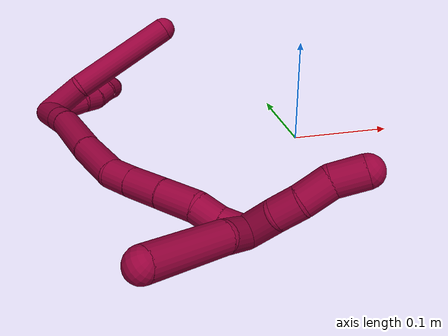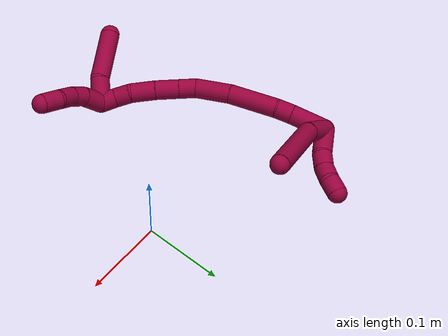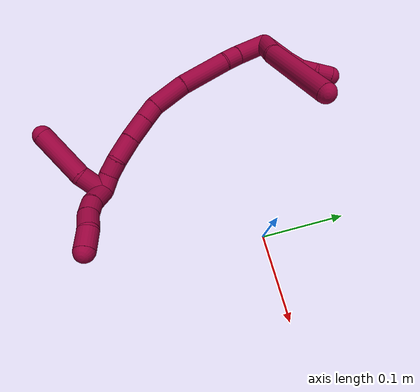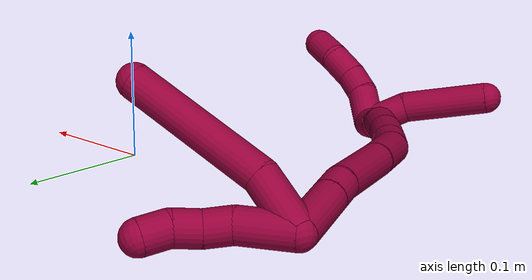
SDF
<sdf version="1.7">
 <world name="default">
  <model name="8">
   <static>0</static>
   <link name="8">
    <collision name="collision-cylinder-e_1_2_8">
     <pose>0.002062 0.005197 0.021239 -0.239973 0.094037 -0.011346</pose>
     <geometry><cylinder><radius>0.0125</radius><length>0.043925</length></cylinder></geometry>
     <surface>
      <friction><ode><mu>1.16</mu><mu2>1.16</mu2><slip1>0</slip1><slip2>0</slip2></ode></friction>
      <contact><ode><kp>1e+06</kp><kd>1</kd><max_vel>0</max_vel><min_depth>0.001</min_depth></ode></contact>
     </surface>
    </collision>
    <visual name="visual-cylinder-e_1_2_8">
     <pose>0.002062 0.005197 0.021239 -0.239973 0.094037 -0.011346</pose>
     <geometry><cylinder><radius>0.0125</radius><length>0.043925</length></cylinder></geometry>
     <material><ambient>0.584314 0 0.227451 1</ambient></material>
    </visual>
    <collision name="collision-cylinder-e_2_8_6">
     <pose>0.013222 0.038023 0.086827 -0.557151 0.172389 -0.049418</pose>
     <geometry><cylinder><radius>0.0125</radius><length>0.106075</length></cylinder></geometry>
     <surface>
      <friction><ode><mu>1.16</mu><mu2>1.16</mu2><slip1>0</slip1><slip2>0</slip2></ode></friction>
      <contact><ode><kp>1e+06</kp><kd>1</kd><max_vel>0</max_vel><min_depth>0.001</min_depth></ode></contact>
     </surface>
    </collision>
    <visual name="visual-cylinder-e_2_8_6">
     <pose>0.013222 0.038023 0.086827 -0.557151 0.172389 -0.049418</pose>
     <geometry><cylinder><radius>0.0125</radius><length>0.106075</length></cylinder></geometry>
     <material><ambient>0.584314 0 0.227451 1</ambient></material>
    </visual>
    <collision name="collision-cylinder-e_1_2_9">
     <pose>0.007858 0.01603 0.00898 -1.06014 0.404119 -0.238952</pose>
     <geometry><cylinder><radius>0.0125</radius><length>0.039967</length></cylinder></geometry>
     <surface>
      <friction><ode><mu>1.16</mu><mu2>1.16</mu2><slip1>0</slip1><slip2>0</slip2></ode></friction>
      <contact><ode><kp>1e+06</kp><kd>1</kd><max_vel>0</max_vel><min_depth>0.001</min_depth></ode></contact>
     </surface>
    </collision>
    <visual name="visual-cylinder-e_1_2_9">
     <pose>0.007858 0.01603 0.00898 -1.06014 0.404119 -0.238952</pose>
     <geometry><cylinder><radius>0.0125</radius><length>0.039967</length></cylinder></geometry>
     <material><ambient>0.584314 0 0.227451 1</ambient></material>
    </visual>
    <collision name="collision-cylinder-e_2_9_10">
     <pose>0.019428 0.041128 0.019964 -1.35332 0.380309 -0.306753</pose>
     <geometry><cylinder><radius>0.0125</radius><length>0.020002</length></cylinder></geometry>
     <surface>
      <friction><ode><mu>1.16</mu><mu2>1.16</mu2><slip1>0</slip1><slip2>0</slip2></ode></friction>
      <contact><ode><kp>1e+06</kp><kd>1</kd><max_vel>0</max_vel><min_depth>0.001</min_depth></ode></contact>
     </surface>
    </collision>
    <visual name="visual-cylinder-e_2_9_10">
     <pose>0.019428 0.041128 0.019964 -1.35332 0.380309 -0.306753</pose>
     <geometry><cylinder><radius>0.0125</radius><length>0.020002</length></cylinder></geometry>
     <material><ambient>0.584314 0 0.227451 1</ambient></material>
    </visual>
    <collision name="collision-cylinder-e_3_10_11">
     <pose>0.023967 0.059892 0.024292 -1.33554 0.082729 -0.065257</pose>
     <geometry><cylinder><radius>0.0125</radius><length>0.020012</length></cylinder></geometry>
     <surface>
      <friction><ode><mu>1.16</mu><mu2>1.16</mu2><slip1>0</slip1><slip2>0</slip2></ode></friction>
      <contact><ode><kp>1e+06</kp><kd>1</kd><max_vel>0</max_vel><min_depth>0.001</min_depth></ode></contact>
     </surface>
    </collision>
    <visual name="visual-cylinder-e_3_10_11">
     <pose>0.023967 0.059892 0.024292 -1.33554 0.082729 -0.065257</pose>
     <geometry><cylinder><radius>0.0125</radius><length>0.020012</length></cylinder></geometry>
     <material><ambient>0.584314 0 0.227451 1</ambient></material>
    </visual>
    <collision name="collision-cylinder-e_4_11_5">
     <pose>0.026166 0.079465 0.025734 -1.65994 0.137526 -0.15032</pose>
     <geometry><cylinder><radius>0.0125</radius><length>0.020019</length></cylinder></geometry>
     <surface>
      <friction><ode><mu>1.16</mu><mu2>1.16</mu2><slip1>0</slip1><slip2>0</slip2></ode></friction>
      <contact><ode><kp>1e+06</kp><kd>1</kd><max_vel>0</max_vel><min_depth>0.001</min_depth></ode></contact>
     </surface>
    </collision>
    <visual name="visual-cylinder-e_4_11_5">
     <pose>0.026166 0.079465 0.025734 -1.65994 0.137526 -0.15032</pose>
     <geometry><cylinder><radius>0.0125</radius><length>0.020019</length></cylinder></geometry>
     <material><ambient>0.584314 0 0.227451 1</ambient></material>
    </visual>
    <collision name="collision-cylinder-e_1_2_12">
     <pose>0.007028 -0.017435 0.013127 0.925447 0.311563 0.156372</pose>
     <geometry><cylinder><radius>0.0125</radius><length>0.045856</length></cylinder></geometry>
     <surface>
      <friction><ode><mu>1.16</mu><mu2>1.16</mu2><slip1>0</slip1><slip2>0</slip2></ode></friction>
      <contact><ode><kp>1e+06</kp><kd>1</kd><max_vel>0</max_vel><min_depth>0.001</min_depth></ode></contact>
     </surface>
    </collision>
    <visual name="visual-cylinder-e_1_2_12">
     <pose>0.007028 -0.017435 0.013127 0.925447 0.311563 0.156372</pose>
     <geometry><cylinder><radius>0.0125</radius><length>0.045856</length></cylinder></geometry>
     <material><ambient>0.584314 0 0.227451 1</ambient></material>
    </visual>
    <collision name="collision-cylinder-e_2_12_13">
     <pose>0.017674 -0.042424 0.031984 0.921834 0.364462 0.182511</pose>
     <geometry><cylinder><radius>0.0125</radius><length>0.020297</length></cylinder></geometry>
     <surface>
      <friction><ode><mu>1.16</mu><mu2>1.16</mu2><slip1>0</slip1><slip2>0</slip2></ode></friction>
      <contact><ode><kp>1e+06</kp><kd>1</kd><max_vel>0</max_vel><min_depth>0.001</min_depth></ode></contact>
     </surface>
    </collision>
    <visual name="visual-cylinder-e_2_12_13">
     <pose>0.017674 -0.042424 0.031984 0.921834 0.364462 0.182511</pose>
     <geometry><cylinder><radius>0.0125</radius><length>0.020297</length></cylinder></geometry>
     <material><ambient>0.584314 0 0.227451 1</ambient></material>
    </visual>
    <collision name="collision-cylinder-e_3_13_14">
     <pose>0.035746 -0.07433 0.051347 1.06044 0.477882 0.283679</pose>
     <geometry><cylinder><radius>0.0125</radius><length>0.062857</length></cylinder></geometry>
     <surface>
      <friction><ode><mu>1.16</mu><mu2>1.16</mu2><slip1>0</slip1><slip2>0</slip2></ode></friction>
      <contact><ode><kp>1e+06</kp><kd>1</kd><max_vel>0</max_vel><min_depth>0.001</min_depth></ode></contact>
     </surface>
    </collision>
    <visual name="visual-cylinder-e_3_13_14">
     <pose>0.035746 -0.07433 0.051347 1.06044 0.477882 0.283679</pose>
     <geometry><cylinder><radius>0.0125</radius><length>0.062857</length></cylinder></geometry>
     <material><ambient>0.584314 0 0.227451 1</ambient></material>
    </visual>
    <collision name="collision-cylinder-e_4_14_15">
     <pose>0.063016 -0.114572 0.075271 0.996065 0.595121 0.330458</pose>
     <geometry><cylinder><radius>0.0125</radius><length>0.045724</length></cylinder></geometry>
     <surface>
      <friction><ode><mu>1.16</mu><mu2>1.16</mu2><slip1>0</slip1><slip2>0</slip2></ode></friction>
      <contact><ode><kp>1e+06</kp><kd>1</kd><max_vel>0</max_vel><min_depth>0.001</min_depth></ode></contact>
     </surface>
    </collision>
    <visual name="visual-cylinder-e_4_14_15">
     <pose>0.063016 -0.114572 0.075271 0.996065 0.595121 0.330458</pose>
     <geometry><cylinder><radius>0.0125</radius><length>0.045724</length></cylinder></geometry>
     <material><ambient>0.584314 0 0.227451 1</ambient></material>
    </visual>
    <collision name="collision-cylinder-e_5_15_16">
     <pose>0.083223 -0.135447 0.092388 0.630798 0.718393 0.24382</pose>
     <geometry><cylinder><radius>0.0125</radius><length>0.022456</length></cylinder></geometry>
     <surface>
      <friction><ode><mu>1.16</mu><mu2>1.16</mu2><slip1>0</slip1><slip2>0</slip2></ode></friction>
      <contact><ode><kp>1e+06</kp><kd>1</kd><max_vel>0</max_vel><min_depth>0.001</min_depth></ode></contact>
     </surface>
    </collision>
    <visual name="visual-cylinder-e_5_15_16">
     <pose>0.083223 -0.135447 0.092388 0.630798 0.718393 0.24382</pose>
     <geometry><cylinder><radius>0.0125</radius><length>0.022456</length></cylinder></geometry>
     <material><ambient>0.584314 0 0.227451 1</ambient></material>
    </visual>
    <collision name="collision-cylinder-e_6_16_17">
     <pose>0.100505 -0.14684 0.10887 0.585894 0.706631 0.221562</pose>
     <geometry><cylinder><radius>0.0125</radius><length>0.030472</length></cylinder></geometry>
     <surface>
      <friction><ode><mu>1.16</mu><mu2>1.16</mu2><slip1>0</slip1><slip2>0</slip2></ode></friction>
      <contact><ode><kp>1e+06</kp><kd>1</kd><max_vel>0</max_vel><min_depth>0.001</min_depth></ode></contact>
     </surface>
    </collision>
    <visual name="visual-cylinder-e_6_16_17">
     <pose>0.100505 -0.14684 0.10887 0.585894 0.706631 0.221562</pose>
     <geometry><cylinder><radius>0.0125</radius><length>0.030472</length></cylinder></geometry>
     <material><ambient>0.584314 0 0.227451 1</ambient></material>
    </visual>
    <collision name="collision-cylinder-e_7_17_18">
     <pose>0.121257 -0.159075 0.128174 0.543315 0.766738 0.223748</pose>
     <geometry><cylinder><radius>0.0125</radius><length>0.031304</length></cylinder></geometry>
     <surface>
      <friction><ode><mu>1.16</mu><mu2>1.16</mu2><slip1>0</slip1><slip2>0</slip2></ode></friction>
      <contact><ode><kp>1e+06</kp><kd>1</kd><max_vel>0</max_vel><min_depth>0.001</min_depth></ode></contact>
     </surface>
    </collision>
    <visual name="visual-cylinder-e_7_17_18">
     <pose>0.121257 -0.159075 0.128174 0.543315 0.766738 0.223748</pose>
     <geometry><cylinder><radius>0.0125</radius><length>0.031304</length></cylinder></geometry>
     <material><ambient>0.584314 0 0.227451 1</ambient></material>
    </visual>
    <collision name="collision-cylinder-e_8_18_19">
     <pose>0.140819 -0.168575 0.141801 0.745548 1.01432 0.427918</pose>
     <geometry><cylinder><radius>0.0125</radius><length>0.020499</length></cylinder></geometry>
     <surface>
      <friction><ode><mu>1.16</mu><mu2>1.16</mu2><slip1>0</slip1><slip2>0</slip2></ode></friction>
      <contact><ode><kp>1e+06</kp><kd>1</kd><max_vel>0</max_vel><min_depth>0.001</min_depth></ode></contact>
     </surface>
    </collision>
    <visual name="visual-cylinder-e_8_18_19">
     <pose>0.140819 -0.168575 0.141801 0.745548 1.01432 0.427918</pose>
     <geometry><cylinder><radius>0.0125</radius><length>0.020499</length></cylinder></geometry>
     <material><ambient>0.584314 0 0.227451 1</ambient></material>
    </visual>
    <collision name="collision-cylinder-e_9_19_1">
     <pose>0.157879 -0.174259 0.151394 0.343931 0.95092 0.178366</pose>
     <geometry><cylinder><radius>0.0125</radius><length>0.020535</length></cylinder></geometry>
     <surface>
      <friction><ode><mu>1.16</mu><mu2>1.16</mu2><slip1>0</slip1><slip2>0</slip2></ode></friction>
      <contact><ode><kp>1e+06</kp><kd>1</kd><max_vel>0</max_vel><min_depth>0.001</min_depth></ode></contact>
     </surface>
    </collision>
    <visual name="visual-cylinder-e_9_19_1">
     <pose>0.157879 -0.174259 0.151394 0.343931 0.95092 0.178366</pose>
     <geometry><cylinder><radius>0.0125</radius><length>0.020535</length></cylinder></geometry>
     <material><ambient>0.584314 0 0.227451 1</ambient></material>
    </visual>
    <collision name="collision-cylinder-e_1_1_20">
     <pose>0.157254 -0.1901 0.157352 1.54606 -0.575865 -0.56253</pose>
     <geometry><cylinder><radius>0.0125</radius><length>0.03299</length></cylinder></geometry>
     <surface>
      <friction><ode><mu>1.16</mu><mu2>1.16</mu2><slip1>0</slip1><slip2>0</slip2></ode></friction>
      <contact><ode><kp>1e+06</kp><kd>1</kd><max_vel>0</max_vel><min_depth>0.001</min_depth></ode></contact>
     </surface>
    </collision>
    <visual name="visual-cylinder-e_1_1_20">
     <pose>0.157254 -0.1901 0.157352 1.54606 -0.575865 -0.56253</pose>
     <geometry><cylinder><radius>0.0125</radius><length>0.03299</length></cylinder></geometry>
     <material><ambient>0.584314 0 0.227451 1</ambient></material>
    </visual>
    <collision name="collision-cylinder-e_2_20_4">
     <pose>0.129917 -0.23002 0.147445 1.94513 -0.579756 -0.825076</pose>
     <geometry><cylinder><radius>0.0125</radius><length>0.06701</length></cylinder></geometry>
     <surface>
      <friction><ode><mu>1.16</mu><mu2>1.16</mu2><slip1>0</slip1><slip2>0</slip2></ode></friction>
      <contact><ode><kp>1e+06</kp><kd>1</kd><max_vel>0</max_vel><min_depth>0.001</min_depth></ode></contact>
     </surface>
    </collision>
    <visual name="visual-cylinder-e_2_20_4">
     <pose>0.129917 -0.23002 0.147445 1.94513 -0.579756 -0.825076</pose>
     <geometry><cylinder><radius>0.0125</radius><length>0.06701</length></cylinder></geometry>
     <material><ambient>0.584314 0 0.227451 1</ambient></material>
    </visual>
    <collision name="collision-cylinder-e_1_1_21">
     <pose>0.166546 -0.178846 0.171786 0.172574 0.020637 0.001785</pose>
     <geometry><cylinder><radius>0.0125</radius><length>0.030004</length></cylinder></geometry>
     <surface>
      <friction><ode><mu>1.16</mu><mu2>1.16</mu2><slip1>0</slip1><slip2>0</slip2></ode></friction>
      <contact><ode><kp>1e+06</kp><kd>1</kd><max_vel>0</max_vel><min_depth>0.001</min_depth></ode></contact>
     </surface>
    </collision>
    <visual name="visual-cylinder-e_1_1_21">
     <pose>0.166546 -0.178846 0.171786 0.172574 0.020637 0.001785</pose>
     <geometry><cylinder><radius>0.0125</radius><length>0.030004</length></cylinder></geometry>
     <material><ambient>0.584314 0 0.227451 1</ambient></material>
    </visual>
    <collision name="collision-cylinder-e_2_21_22">
     <pose>0.168682 -0.180625 0.196514 -0.079814 0.180939 -0.007244</pose>
     <geometry><cylinder><radius>0.0125</radius><length>0.020299</length></cylinder></geometry>
     <surface>
      <friction><ode><mu>1.16</mu><mu2>1.16</mu2><slip1>0</slip1><slip2>0</slip2></ode></friction>
      <contact><ode><kp>1e+06</kp><kd>1</kd><max_vel>0</max_vel><min_depth>0.001</min_depth></ode></contact>
     </surface>
    </collision>
    <visual name="visual-cylinder-e_2_21_22">
     <pose>0.168682 -0.180625 0.196514 -0.079814 0.180939 -0.007244</pose>
     <geometry><cylinder><radius>0.0125</radius><length>0.020299</length></cylinder></geometry>
     <material><ambient>0.584314 0 0.227451 1</ambient></material>
    </visual>
    <collision name="collision-cylinder-e_3_22_23">
     <pose>0.172547 -0.17629 0.218038 -0.296839 0.166893 -0.02501</pose>
     <geometry><cylinder><radius>0.0125</radius><length>0.024544</length></cylinder></geometry>
     <surface>
      <friction><ode><mu>1.16</mu><mu2>1.16</mu2><slip1>0</slip1><slip2>0</slip2></ode></friction>
      <contact><ode><kp>1e+06</kp><kd>1</kd><max_vel>0</max_vel><min_depth>0.001</min_depth></ode></contact>
     </surface>
    </collision>
    <visual name="visual-cylinder-e_3_22_23">
     <pose>0.172547 -0.17629 0.218038 -0.296839 0.166893 -0.02501</pose>
     <geometry><cylinder><radius>0.0125</radius><length>0.024544</length></cylinder></geometry>
     <material><ambient>0.584314 0 0.227451 1</ambient></material>
    </visual>
    <collision name="collision-cylinder-e_4_23_3">
     <pose>0.17998 -0.17135 0.240885 -0.123529 0.443279 -0.02787</pose>
     <geometry><cylinder><radius>0.0125</radius><length>0.025153</length></cylinder></geometry>
     <surface>
      <friction><ode><mu>1.16</mu><mu2>1.16</mu2><slip1>0</slip1><slip2>0</slip2></ode></friction>
      <contact><ode><kp>1e+06</kp><kd>1</kd><max_vel>0</max_vel><min_depth>0.001</min_depth></ode></contact>
     </surface>
    </collision>
    <visual name="visual-cylinder-e_4_23_3">
     <pose>0.17998 -0.17135 0.240885 -0.123529 0.443279 -0.02787</pose>
     <geometry><cylinder><radius>0.0125</radius><length>0.025153</length></cylinder></geometry>
     <material><ambient>0.584314 0 0.227451 1</ambient></material>
    </visual>
    <collision name="collision-sphere-3">
     <pose>0.185374 -0.16995 0.252159 0 -0 0</pose>
     <geometry><sphere><radius>0.0125</radius></sphere></geometry>
     <surface>
      <friction><ode><mu>1.16</mu><mu2>1.16</mu2><slip1>0</slip1><slip2>0</slip2></ode></friction>
      <contact><ode><kp>1e+06</kp><kd>1</kd><max_vel>0</max_vel><min_depth>0.001</min_depth></ode></contact>
     </surface>
    </collision>
    <visual name="visual-sphere-3">
     <pose>0.185374 -0.16995 0.252159 0 -0 0</pose>
     <geometry><sphere><radius>0.0125</radius></sphere></geometry>
     <material><ambient>0.584314 0 0.227451 1</ambient></material>
    </visual>
    <collision name="collision-sphere-23">
     <pose>0.174586 -0.17275 0.22961 0 -0 0</pose>
     <geometry><sphere><radius>0.0125</radius></sphere></geometry>
     <surface>
      <friction><ode><mu>1.16</mu><mu2>1.16</mu2><slip1>0</slip1><slip2>0</slip2></ode></friction>
      <contact><ode><kp>1e+06</kp><kd>1</kd><max_vel>0</max_vel><min_depth>0.001</min_depth></ode></contact>
     </surface>
    </collision>
    <visual name="visual-sphere-23">
     <pose>0.174586 -0.17275 0.22961 0 -0 0</pose>
     <geometry><sphere><radius>0.0125</radius></sphere></geometry>
     <material><ambient>0.584314 0 0.227451 1</ambient></material>
    </visual>
    <collision name="collision-sphere-22">
     <pose>0.170509 -0.179829 0.206466 0 -0 0</pose>
     <geometry><sphere><radius>0.0125</radius></sphere></geometry>
     <surface>
      <friction><ode><mu>1.16</mu><mu2>1.16</mu2><slip1>0</slip1><slip2>0</slip2></ode></friction>
      <contact><ode><kp>1e+06</kp><kd>1</kd><max_vel>0</max_vel><min_depth>0.001</min_depth></ode></contact>
     </surface>
    </collision>
    <visual name="visual-sphere-22">
     <pose>0.170509 -0.179829 0.206466 0 -0 0</pose>
     <geometry><sphere><radius>0.0125</radius></sphere></geometry>
     <material><ambient>0.584314 0 0.227451 1</ambient></material>
    </visual>
    <collision name="collision-sphere-21">
     <pose>0.166856 -0.181421 0.186562 0 -0 0</pose>
     <geometry><sphere><radius>0.0125</radius></sphere></geometry>
     <surface>
      <friction><ode><mu>1.16</mu><mu2>1.16</mu2><slip1>0</slip1><slip2>0</slip2></ode></friction>
      <contact><ode><kp>1e+06</kp><kd>1</kd><max_vel>0</max_vel><min_depth>0.001</min_depth></ode></contact>
     </surface>
    </collision>
    <visual name="visual-sphere-21">
     <pose>0.166856 -0.181421 0.186562 0 -0 0</pose>
     <geometry><sphere><radius>0.0125</radius></sphere></geometry>
     <material><ambient>0.584314 0 0.227451 1</ambient></material>
    </visual>
    <collision name="collision-sphere-4">
     <pose>0.111562 -0.256109 0.137195 0 -0 0</pose>
     <geometry><sphere><radius>0.0125</radius></sphere></geometry>
     <surface>
      <friction><ode><mu>1.16</mu><mu2>1.16</mu2><slip1>0</slip1><slip2>0</slip2></ode></friction>
      <contact><ode><kp>1e+06</kp><kd>1</kd><max_vel>0</max_vel><min_depth>0.001</min_depth></ode></contact>
     </surface>
    </collision>
    <visual name="visual-sphere-4">
     <pose>0.111562 -0.256109 0.137195 0 -0 0</pose>
     <geometry><sphere><radius>0.0125</radius></sphere></geometry>
     <material><ambient>0.584314 0 0.227451 1</ambient></material>
    </visual>
    <collision name="collision-sphere-20">
     <pose>0.148272 -0.203931 0.157694 0 -0 0</pose>
     <geometry><sphere><radius>0.0125</radius></sphere></geometry>
     <surface>
      <friction><ode><mu>1.16</mu><mu2>1.16</mu2><slip1>0</slip1><slip2>0</slip2></ode></friction>
      <contact><ode><kp>1e+06</kp><kd>1</kd><max_vel>0</max_vel><min_depth>0.001</min_depth></ode></contact>
     </surface>
    </collision>
    <visual name="visual-sphere-20">
     <pose>0.148272 -0.203931 0.157694 0 -0 0</pose>
     <geometry><sphere><radius>0.0125</radius></sphere></geometry>
     <material><ambient>0.584314 0 0.227451 1</ambient></material>
    </visual>
    <collision name="collision-sphere-11">
     <pose>0.024794 0.069589 0.026616 0 -0 0</pose>
     <geometry><sphere><radius>0.0125</radius></sphere></geometry>
     <surface>
      <friction><ode><mu>1.16</mu><mu2>1.16</mu2><slip1>0</slip1><slip2>0</slip2></ode></friction>
      <contact><ode><kp>1e+06</kp><kd>1</kd><max_vel>0</max_vel><min_depth>0.001</min_depth></ode></contact>
     </surface>
    </collision>
    <visual name="visual-sphere-11">
     <pose>0.024794 0.069589 0.026616 0 -0 0</pose>
     <geometry><sphere><radius>0.0125</radius></sphere></geometry>
     <material><ambient>0.584314 0 0.227451 1</ambient></material>
    </visual>
    <collision name="collision-sphere-10">
     <pose>0.02314 0.050195 0.021968 0 -0 0</pose>
     <geometry><sphere><radius>0.0125</radius></sphere></geometry>
     <surface>
      <friction><ode><mu>1.16</mu><mu2>1.16</mu2><slip1>0</slip1><slip2>0</slip2></ode></friction>
      <contact><ode><kp>1e+06</kp><kd>1</kd><max_vel>0</max_vel><min_depth>0.001</min_depth></ode></contact>
     </surface>
    </collision>
    <visual name="visual-sphere-10">
     <pose>0.02314 0.050195 0.021968 0 -0 0</pose>
     <geometry><sphere><radius>0.0125</radius></sphere></geometry>
     <material><ambient>0.584314 0 0.227451 1</ambient></material>
    </visual>
    <collision name="collision-sphere-6">
     <pose>0.02232 0.065652 0.131176 0 -0 0</pose>
     <geometry><sphere><radius>0.0125</radius></sphere></geometry>
     <surface>
      <friction><ode><mu>1.16</mu><mu2>1.16</mu2><slip1>0</slip1><slip2>0</slip2></ode></friction>
      <contact><ode><kp>1e+06</kp><kd>1</kd><max_vel>0</max_vel><min_depth>0.001</min_depth></ode></contact>
     </surface>
    </collision>
    <visual name="visual-sphere-6">
     <pose>0.02232 0.065652 0.131176 0 -0 0</pose>
     <geometry><sphere><radius>0.0125</radius></sphere></geometry>
     <material><ambient>0.584314 0 0.227451 1</ambient></material>
    </visual>
    <collision name="collision-sphere-9">
     <pose>0.015716 0.03206 0.01796 0 -0 0</pose>
     <geometry><sphere><radius>0.0125</radius></sphere></geometry>
     <surface>
      <friction><ode><mu>1.16</mu><mu2>1.16</mu2><slip1>0</slip1><slip2>0</slip2></ode></friction>
      <contact><ode><kp>1e+06</kp><kd>1</kd><max_vel>0</max_vel><min_depth>0.001</min_depth></ode></contact>
     </surface>
    </collision>
    <visual name="visual-sphere-9">
     <pose>0.015716 0.03206 0.01796 0 -0 0</pose>
     <geometry><sphere><radius>0.0125</radius></sphere></geometry>
     <material><ambient>0.584314 0 0.227451 1</ambient></material>
    </visual>
    <collision name="collision-sphere-2">
     <geometry><sphere><radius>0.0125</radius></sphere></geometry>
     <surface>
      <friction><ode><mu>1.16</mu><mu2>1.16</mu2><slip1>0</slip1><slip2>0</slip2></ode></friction>
      <contact><ode><kp>1e+06</kp><kd>1</kd><max_vel>0</max_vel><min_depth>0.001</min_depth></ode></contact>
     </surface>
    </collision>
    <visual name="visual-sphere-2">
     <geometry><sphere><radius>0.0125</radius></sphere></geometry>
     <material><ambient>0.584314 0 0.227451 1</ambient></material>
    </visual>
    <collision name="collision-sphere-19">
     <pose>0.149522 -0.172247 0.145779 0 -0 0</pose>
     <geometry><sphere><radius>0.0125</radius></sphere></geometry>
     <surface>
      <friction><ode><mu>1.16</mu><mu2>1.16</mu2><slip1>0</slip1><slip2>0</slip2></ode></friction>
      <contact><ode><kp>1e+06</kp><kd>1</kd><max_vel>0</max_vel><min_depth>0.001</min_depth></ode></contact>
     </surface>
    </collision>
    <visual name="visual-sphere-19">
     <pose>0.149522 -0.172247 0.145779 0 -0 0</pose>
     <geometry><sphere><radius>0.0125</radius></sphere></geometry>
     <material><ambient>0.584314 0 0.227451 1</ambient></material>
    </visual>
    <collision name="collision-sphere-8">
     <pose>0.004124 0.010394 0.042478 0 -0 0</pose>
     <geometry><sphere><radius>0.0125</radius></sphere></geometry>
     <surface>
      <friction><ode><mu>1.16</mu><mu2>1.16</mu2><slip1>0</slip1><slip2>0</slip2></ode></friction>
      <contact><ode><kp>1e+06</kp><kd>1</kd><max_vel>0</max_vel><min_depth>0.001</min_depth></ode></contact>
     </surface>
    </collision>
    <visual name="visual-sphere-8">
     <pose>0.004124 0.010394 0.042478 0 -0 0</pose>
     <geometry><sphere><radius>0.0125</radius></sphere></geometry>
     <material><ambient>0.584314 0 0.227451 1</ambient></material>
    </visual>
    <collision name="collision-sphere-5">
     <pose>0.027539 0.08934 0.024851 0 -0 0</pose>
     <geometry><sphere><radius>0.0125</radius></sphere></geometry>
     <surface>
      <friction><ode><mu>1.16</mu><mu2>1.16</mu2><slip1>0</slip1><slip2>0</slip2></ode></friction>
      <contact><ode><kp>1e+06</kp><kd>1</kd><max_vel>0</max_vel><min_depth>0.001</min_depth></ode></contact>
     </surface>
    </collision>
    <visual name="visual-sphere-5">
     <pose>0.027539 0.08934 0.024851 0 -0 0</pose>
     <geometry><sphere><radius>0.0125</radius></sphere></geometry>
     <material><ambient>0.584314 0 0.227451 1</ambient></material>
    </visual>
    <collision name="collision-sphere-12">
     <pose>0.014057 -0.03487 0.026253 0 -0 0</pose>
     <geometry><sphere><radius>0.0125</radius></sphere></geometry>
     <surface>
      <friction><ode><mu>1.16</mu><mu2>1.16</mu2><slip1>0</slip1><slip2>0</slip2></ode></friction>
      <contact><ode><kp>1e+06</kp><kd>1</kd><max_vel>0</max_vel><min_depth>0.001</min_depth></ode></contact>
     </surface>
    </collision>
    <visual name="visual-sphere-12">
     <pose>0.014057 -0.03487 0.026253 0 -0 0</pose>
     <geometry><sphere><radius>0.0125</radius></sphere></geometry>
     <material><ambient>0.584314 0 0.227451 1</ambient></material>
    </visual>
    <collision name="collision-sphere-13">
     <pose>0.021292 -0.049979 0.037714 0 -0 0</pose>
     <geometry><sphere><radius>0.0125</radius></sphere></geometry>
     <surface>
      <friction><ode><mu>1.16</mu><mu2>1.16</mu2><slip1>0</slip1><slip2>0</slip2></ode></friction>
      <contact><ode><kp>1e+06</kp><kd>1</kd><max_vel>0</max_vel><min_depth>0.001</min_depth></ode></contact>
     </surface>
    </collision>
    <visual name="visual-sphere-13">
     <pose>0.021292 -0.049979 0.037714 0 -0 0</pose>
     <geometry><sphere><radius>0.0125</radius></sphere></geometry>
     <material><ambient>0.584314 0 0.227451 1</ambient></material>
    </visual>
    <collision name="collision-sphere-14">
     <pose>0.0502 -0.098682 0.06498 0 -0 0</pose>
     <geometry><sphere><radius>0.0125</radius></sphere></geometry>
     <surface>
      <friction><ode><mu>1.16</mu><mu2>1.16</mu2><slip1>0</slip1><slip2>0</slip2></ode></friction>
      <contact><ode><kp>1e+06</kp><kd>1</kd><max_vel>0</max_vel><min_depth>0.001</min_depth></ode></contact>
     </surface>
    </collision>
    <visual name="visual-sphere-14">
     <pose>0.0502 -0.098682 0.06498 0 -0 0</pose>
     <geometry><sphere><radius>0.0125</radius></sphere></geometry>
     <material><ambient>0.584314 0 0.227451 1</ambient></material>
    </visual>
    <collision name="collision-sphere-15">
     <pose>0.075833 -0.130461 0.085562 0 -0 0</pose>
     <geometry><sphere><radius>0.0125</radius></sphere></geometry>
     <surface>
      <friction><ode><mu>1.16</mu><mu2>1.16</mu2><slip1>0</slip1><slip2>0</slip2></ode></friction>
      <contact><ode><kp>1e+06</kp><kd>1</kd><max_vel>0</max_vel><min_depth>0.001</min_depth></ode></contact>
     </surface>
    </collision>
    <visual name="visual-sphere-15">
     <pose>0.075833 -0.130461 0.085562 0 -0 0</pose>
     <geometry><sphere><radius>0.0125</radius></sphere></geometry>
     <material><ambient>0.584314 0 0.227451 1</ambient></material>
    </visual>
    <collision name="collision-sphere-16">
     <pose>0.090613 -0.140432 0.099215 0 -0 0</pose>
     <geometry><sphere><radius>0.0125</radius></sphere></geometry>
     <surface>
      <friction><ode><mu>1.16</mu><mu2>1.16</mu2><slip1>0</slip1><slip2>0</slip2></ode></friction>
      <contact><ode><kp>1e+06</kp><kd>1</kd><max_vel>0</max_vel><min_depth>0.001</min_depth></ode></contact>
     </surface>
    </collision>
    <visual name="visual-sphere-16">
     <pose>0.090613 -0.140432 0.099215 0 -0 0</pose>
     <geometry><sphere><radius>0.0125</radius></sphere></geometry>
     <material><ambient>0.584314 0 0.227451 1</ambient></material>
    </visual>
    <collision name="collision-sphere-17">
     <pose>0.110397 -0.153247 0.118525 0 -0 0</pose>
     <geometry><sphere><radius>0.0125</radius></sphere></geometry>
     <surface>
      <friction><ode><mu>1.16</mu><mu2>1.16</mu2><slip1>0</slip1><slip2>0</slip2></ode></friction>
      <contact><ode><kp>1e+06</kp><kd>1</kd><max_vel>0</max_vel><min_depth>0.001</min_depth></ode></contact>
     </surface>
    </collision>
    <visual name="visual-sphere-17">
     <pose>0.110397 -0.153247 0.118525 0 -0 0</pose>
     <geometry><sphere><radius>0.0125</radius></sphere></geometry>
     <material><ambient>0.584314 0 0.227451 1</ambient></material>
    </visual>
    <collision name="collision-sphere-18">
     <pose>0.132116 -0.164902 0.137823 0 -0 0</pose>
     <geometry><sphere><radius>0.0125</radius></sphere></geometry>
     <surface>
      <friction><ode><mu>1.16</mu><mu2>1.16</mu2><slip1>0</slip1><slip2>0</slip2></ode></friction>
      <contact><ode><kp>1e+06</kp><kd>1</kd><max_vel>0</max_vel><min_depth>0.001</min_depth></ode></contact>
     </surface>
    </collision>
    <visual name="visual-sphere-18">
     <pose>0.132116 -0.164902 0.137823 0 -0 0</pose>
     <geometry><sphere><radius>0.0125</radius></sphere></geometry>
     <material><ambient>0.584314 0 0.227451 1</ambient></material>
    </visual>
    <collision name="collision-sphere-1">
     <pose>0.166237 -0.17627 0.15701 0 -0 0</pose>
     <geometry><sphere><radius>0.0125</radius></sphere></geometry>
     <surface>
      <friction><ode><mu>1.16</mu><mu2>1.16</mu2><slip1>0</slip1><slip2>0</slip2></ode></friction>
      <contact><ode><kp>1e+06</kp><kd>1</kd><max_vel>0</max_vel><min_depth>0.001</min_depth></ode></contact>
     </surface>
    </collision>
    <visual name="visual-sphere-1">
     <pose>0.166237 -0.17627 0.15701 0 -0 0</pose>
     <geometry><sphere><radius>0.0125</radius></sphere></geometry>
     <material><ambient>0.584314 0 0.227451 1</ambient></material>
    </visual>
    <inertial>
     <pose>0.073255 -0.082589 0.094491 0 -0 0</pose>
     <mass>0.75</mass>
     <inertia><ixx>0.000195</ixx><ixy>0</ixy><ixz>0</ixz><iyy>0.000132</iyy><iyz>0</iyz><izz>-7e-06</izz></inertia>
    </inertial>
   </link>
   <pose>-0.246076 0.077344 0.020154 0.000775 0.791218 -0.38613</pose>
  </model>
 </world>
</sdf>
